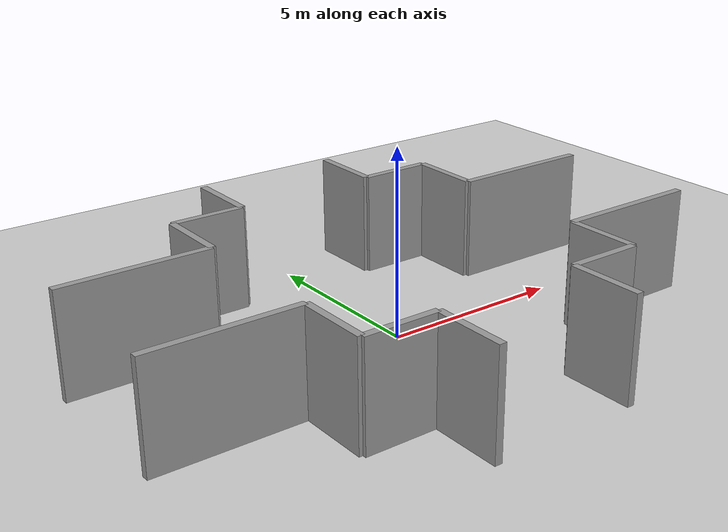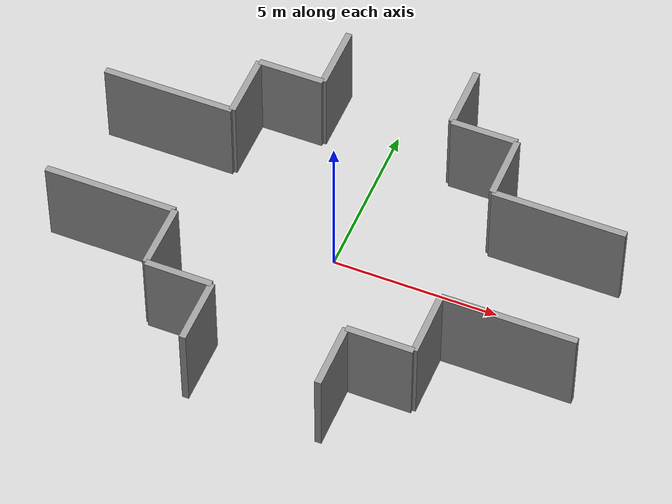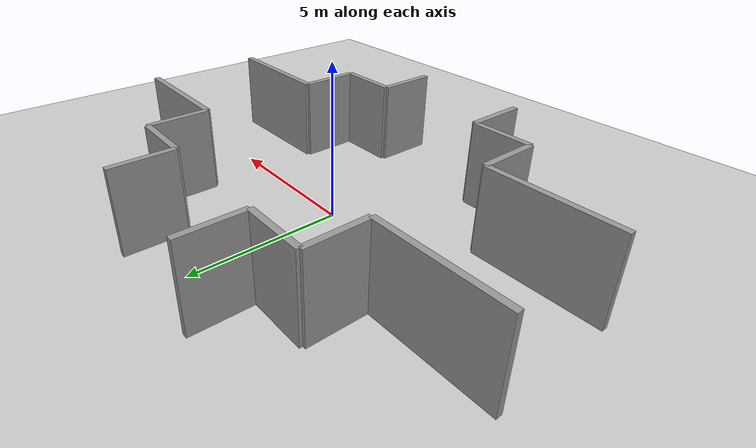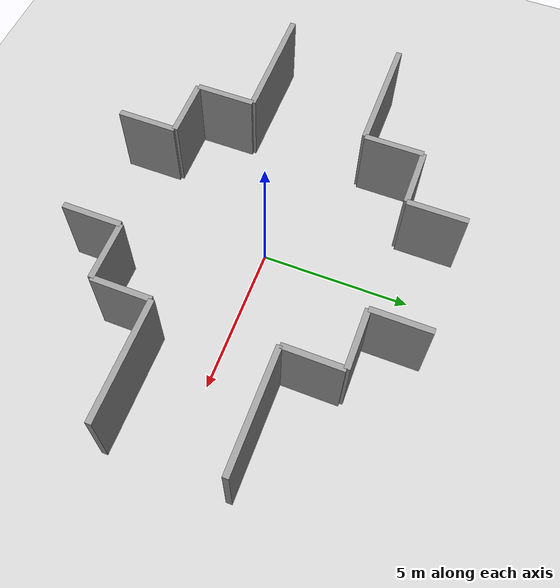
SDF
<?xml version="1.0" ?>
  <!-- this file is auto generated using pedsim_gazebo_plugin pkg -->
  <sdf version="1.5">
    <world name="default">

    <gui>
      <camera name="user_camera">
        <pose>0 0 16 0 1.5707 1.5707</pose>
      </camera>
    </gui>

    <!-- Ground Plane -->
    <include>
      <uri>model://ground_plane</uri>
    </include>

    <include>
      <uri>model://sun</uri>
    </include>

    <model name='grey_wall_1'>
      <static>1</static>
      <link name='link'>
        <pose frame=''>-2.0 -5.0  1.4 0 0 1.57</pose>
        <collision name='collision'>
          <geometry>
            <box>
              <size> 2.0 0.2  2.8 </size>
            </box>
          </geometry>
          <max_contacts>10</max_contacts>
          <surface>
            <contact>
              <ode/>
            </contact>
            <bounce/>
            <friction>
              <torsional>
                <ode/>
              </torsional>
              <ode/>
            </friction>
          </surface>
        </collision>
        <visual name='visual'>
          <cast_shadows>0</cast_shadows>
          <geometry>
            <box>
              <size> 2.0 0.2  2.8 </size>
            </box>
          </geometry>
            <material>
              <script>
                <uri>model://grey_wall/materials/scripts</uri>
                <uri>model://grey_wall/materials/textures</uri>
                <name>vrc/grey_wall</name>
              </script>
            </material>
        </visual>
        <self_collide>0</self_collide>
        <enable_wind>0</enable_wind>
        <kinematic>0</kinematic>
      </link>
    </model>

    <model name='grey_wall_2'>
      <static>1</static>
      <link name='link'>
        <pose frame=''>2.0 -5.0  1.4 0 0 1.57</pose>
        <collision name='collision'>
          <geometry>
            <box>
              <size> 2.0 0.2  2.8 </size>
            </box>
          </geometry>
          <max_contacts>10</max_contacts>
          <surface>
            <contact>
              <ode/>
            </contact>
            <bounce/>
            <friction>
              <torsional>
                <ode/>
              </torsional>
              <ode/>
            </friction>
          </surface>
        </collision>
        <visual name='visual'>
          <cast_shadows>0</cast_shadows>
          <geometry>
            <box>
              <size> 2.0 0.2  2.8 </size>
            </box>
          </geometry>
            <material>
              <script>
                <uri>model://grey_wall/materials/scripts</uri>
                <uri>model://grey_wall/materials/textures</uri>
                <name>vrc/grey_wall</name>
              </script>
            </material>
        </visual>
        <self_collide>0</self_collide>
        <enable_wind>0</enable_wind>
        <kinematic>0</kinematic>
      </link>
    </model>

    <model name='grey_wall_3'>
      <static>1</static>
      <link name='link'>
        <pose frame=''>-3.0 -4.0  1.4 0 0 -0.0</pose>
        <collision name='collision'>
          <geometry>
            <box>
              <size> 2.0 0.2  2.8 </size>
            </box>
          </geometry>
          <max_contacts>10</max_contacts>
          <surface>
            <contact>
              <ode/>
            </contact>
            <bounce/>
            <friction>
              <torsional>
                <ode/>
              </torsional>
              <ode/>
            </friction>
          </surface>
        </collision>
        <visual name='visual'>
          <cast_shadows>0</cast_shadows>
          <geometry>
            <box>
              <size> 2.0 0.2  2.8 </size>
            </box>
          </geometry>
            <material>
              <script>
                <uri>model://grey_wall/materials/scripts</uri>
                <uri>model://grey_wall/materials/textures</uri>
                <name>vrc/grey_wall</name>
              </script>
            </material>
        </visual>
        <self_collide>0</self_collide>
        <enable_wind>0</enable_wind>
        <kinematic>0</kinematic>
      </link>
    </model>

    <model name='grey_wall_4'>
      <static>1</static>
      <link name='link'>
        <pose frame=''>3.0 -4.0  1.4 0 0 0.0</pose>
        <collision name='collision'>
          <geometry>
            <box>
              <size> 2.0 0.2  2.8 </size>
            </box>
          </geometry>
          <max_contacts>10</max_contacts>
          <surface>
            <contact>
              <ode/>
            </contact>
            <bounce/>
            <friction>
              <torsional>
                <ode/>
              </torsional>
              <ode/>
            </friction>
          </surface>
        </collision>
        <visual name='visual'>
          <cast_shadows>0</cast_shadows>
          <geometry>
            <box>
              <size> 2.0 0.2  2.8 </size>
            </box>
          </geometry>
            <material>
              <script>
                <uri>model://grey_wall/materials/scripts</uri>
                <uri>model://grey_wall/materials/textures</uri>
                <name>vrc/grey_wall</name>
              </script>
            </material>
        </visual>
        <self_collide>0</self_collide>
        <enable_wind>0</enable_wind>
        <kinematic>0</kinematic>
      </link>
    </model>

    <model name='grey_wall_5'>
      <static>1</static>
      <link name='link'>
        <pose frame=''>-4.0 -3.0  1.4 0 0 1.57</pose>
        <collision name='collision'>
          <geometry>
            <box>
              <size> 2.0 0.2  2.8 </size>
            </box>
          </geometry>
          <max_contacts>10</max_contacts>
          <surface>
            <contact>
              <ode/>
            </contact>
            <bounce/>
            <friction>
              <torsional>
                <ode/>
              </torsional>
              <ode/>
            </friction>
          </surface>
        </collision>
        <visual name='visual'>
          <cast_shadows>0</cast_shadows>
          <geometry>
            <box>
              <size> 2.0 0.2  2.8 </size>
            </box>
          </geometry>
            <material>
              <script>
                <uri>model://grey_wall/materials/scripts</uri>
                <uri>model://grey_wall/materials/textures</uri>
                <name>vrc/grey_wall</name>
              </script>
            </material>
        </visual>
        <self_collide>0</self_collide>
        <enable_wind>0</enable_wind>
        <kinematic>0</kinematic>
      </link>
    </model>

    <model name='grey_wall_6'>
      <static>1</static>
      <link name='link'>
        <pose frame=''>4.0 -3.0  1.4 0 0 1.57</pose>
        <collision name='collision'>
          <geometry>
            <box>
              <size> 2.0 0.2  2.8 </size>
            </box>
          </geometry>
          <max_contacts>10</max_contacts>
          <surface>
            <contact>
              <ode/>
            </contact>
            <bounce/>
            <friction>
              <torsional>
                <ode/>
              </torsional>
              <ode/>
            </friction>
          </surface>
        </collision>
        <visual name='visual'>
          <cast_shadows>0</cast_shadows>
          <geometry>
            <box>
              <size> 2.0 0.2  2.8 </size>
            </box>
          </geometry>
            <material>
              <script>
                <uri>model://grey_wall/materials/scripts</uri>
                <uri>model://grey_wall/materials/textures</uri>
                <name>vrc/grey_wall</name>
              </script>
            </material>
        </visual>
        <self_collide>0</self_collide>
        <enable_wind>0</enable_wind>
        <kinematic>0</kinematic>
      </link>
    </model>

    <model name='grey_wall_7'>
      <static>1</static>
      <link name='link'>
        <pose frame=''>-4.0 3.0  1.4 0 0 1.57</pose>
        <collision name='collision'>
          <geometry>
            <box>
              <size> 2.0 0.2  2.8 </size>
            </box>
          </geometry>
          <max_contacts>10</max_contacts>
          <surface>
            <contact>
              <ode/>
            </contact>
            <bounce/>
            <friction>
              <torsional>
                <ode/>
              </torsional>
              <ode/>
            </friction>
          </surface>
        </collision>
        <visual name='visual'>
          <cast_shadows>0</cast_shadows>
          <geometry>
            <box>
              <size> 2.0 0.2  2.8 </size>
            </box>
          </geometry>
            <material>
              <script>
                <uri>model://grey_wall/materials/scripts</uri>
                <uri>model://grey_wall/materials/textures</uri>
                <name>vrc/grey_wall</name>
              </script>
            </material>
        </visual>
        <self_collide>0</self_collide>
        <enable_wind>0</enable_wind>
        <kinematic>0</kinematic>
      </link>
    </model>

    <model name='grey_wall_8'>
      <static>1</static>
      <link name='link'>
        <pose frame=''>4.0 3.0  1.4 0 0 1.57</pose>
        <collision name='collision'>
          <geometry>
            <box>
              <size> 2.0 0.2  2.8 </size>
            </box>
          </geometry>
          <max_contacts>10</max_contacts>
          <surface>
            <contact>
              <ode/>
            </contact>
            <bounce/>
            <friction>
              <torsional>
                <ode/>
              </torsional>
              <ode/>
            </friction>
          </surface>
        </collision>
        <visual name='visual'>
          <cast_shadows>0</cast_shadows>
          <geometry>
            <box>
              <size> 2.0 0.2  2.8 </size>
            </box>
          </geometry>
            <material>
              <script>
                <uri>model://grey_wall/materials/scripts</uri>
                <uri>model://grey_wall/materials/textures</uri>
                <name>vrc/grey_wall</name>
              </script>
            </material>
        </visual>
        <self_collide>0</self_collide>
        <enable_wind>0</enable_wind>
        <kinematic>0</kinematic>
      </link>
    </model>

    <model name='grey_wall_9'>
      <static>1</static>
      <link name='link'>
        <pose frame=''>-3.0 4.0  1.4 0 0 -0.0</pose>
        <collision name='collision'>
          <geometry>
            <box>
              <size> 2.0 0.2  2.8 </size>
            </box>
          </geometry>
          <max_contacts>10</max_contacts>
          <surface>
            <contact>
              <ode/>
            </contact>
            <bounce/>
            <friction>
              <torsional>
                <ode/>
              </torsional>
              <ode/>
            </friction>
          </surface>
        </collision>
        <visual name='visual'>
          <cast_shadows>0</cast_shadows>
          <geometry>
            <box>
              <size> 2.0 0.2  2.8 </size>
            </box>
          </geometry>
            <material>
              <script>
                <uri>model://grey_wall/materials/scripts</uri>
                <uri>model://grey_wall/materials/textures</uri>
                <name>vrc/grey_wall</name>
              </script>
            </material>
        </visual>
        <self_collide>0</self_collide>
        <enable_wind>0</enable_wind>
        <kinematic>0</kinematic>
      </link>
    </model>

    <model name='grey_wall_10'>
      <static>1</static>
      <link name='link'>
        <pose frame=''>3.0 4.0  1.4 0 0 0.0</pose>
        <collision name='collision'>
          <geometry>
            <box>
              <size> 2.0 0.2  2.8 </size>
            </box>
          </geometry>
          <max_contacts>10</max_contacts>
          <surface>
            <contact>
              <ode/>
            </contact>
            <bounce/>
            <friction>
              <torsional>
                <ode/>
              </torsional>
              <ode/>
            </friction>
          </surface>
        </collision>
        <visual name='visual'>
          <cast_shadows>0</cast_shadows>
          <geometry>
            <box>
              <size> 2.0 0.2  2.8 </size>
            </box>
          </geometry>
            <material>
              <script>
                <uri>model://grey_wall/materials/scripts</uri>
                <uri>model://grey_wall/materials/textures</uri>
                <name>vrc/grey_wall</name>
              </script>
            </material>
        </visual>
        <self_collide>0</self_collide>
        <enable_wind>0</enable_wind>
        <kinematic>0</kinematic>
      </link>
    </model>

    <model name='grey_wall_11'>
      <static>1</static>
      <link name='link'>
        <pose frame=''>-6.0 -2.0  1.4 0 0 -0.0</pose>
        <collision name='collision'>
          <geometry>
            <box>
              <size> 4.0 0.2  2.8 </size>
            </box>
          </geometry>
          <max_contacts>10</max_contacts>
          <surface>
            <contact>
              <ode/>
            </contact>
            <bounce/>
            <friction>
              <torsional>
                <ode/>
              </torsional>
              <ode/>
            </friction>
          </surface>
        </collision>
        <visual name='visual'>
          <cast_shadows>0</cast_shadows>
          <geometry>
            <box>
              <size> 4.0 0.2  2.8 </size>
            </box>
          </geometry>
            <material>
              <script>
                <uri>model://grey_wall/materials/scripts</uri>
                <uri>model://grey_wall/materials/textures</uri>
                <name>vrc/grey_wall</name>
              </script>
            </material>
        </visual>
        <self_collide>0</self_collide>
        <enable_wind>0</enable_wind>
        <kinematic>0</kinematic>
      </link>
    </model>

    <model name='grey_wall_12'>
      <static>1</static>
      <link name='link'>
        <pose frame=''>6.0 -2.0  1.4 0 0 0.0</pose>
        <collision name='collision'>
          <geometry>
            <box>
              <size> 4.0 0.2  2.8 </size>
            </box>
          </geometry>
          <max_contacts>10</max_contacts>
          <surface>
            <contact>
              <ode/>
            </contact>
            <bounce/>
            <friction>
              <torsional>
                <ode/>
              </torsional>
              <ode/>
            </friction>
          </surface>
        </collision>
        <visual name='visual'>
          <cast_shadows>0</cast_shadows>
          <geometry>
            <box>
              <size> 4.0 0.2  2.8 </size>
            </box>
          </geometry>
            <material>
              <script>
                <uri>model://grey_wall/materials/scripts</uri>
                <uri>model://grey_wall/materials/textures</uri>
                <name>vrc/grey_wall</name>
              </script>
            </material>
        </visual>
        <self_collide>0</self_collide>
        <enable_wind>0</enable_wind>
        <kinematic>0</kinematic>
      </link>
    </model>

    <model name='grey_wall_13'>
      <static>1</static>
      <link name='link'>
        <pose frame=''>-6.0 2.0  1.4 0 0 -0.0</pose>
        <collision name='collision'>
          <geometry>
            <box>
              <size> 4.0 0.2  2.8 </size>
            </box>
          </geometry>
          <max_contacts>10</max_contacts>
          <surface>
            <contact>
              <ode/>
            </contact>
            <bounce/>
            <friction>
              <torsional>
                <ode/>
              </torsional>
              <ode/>
            </friction>
          </surface>
        </collision>
        <visual name='visual'>
          <cast_shadows>0</cast_shadows>
          <geometry>
            <box>
              <size> 4.0 0.2  2.8 </size>
            </box>
          </geometry>
            <material>
              <script>
                <uri>model://grey_wall/materials/scripts</uri>
                <uri>model://grey_wall/materials/textures</uri>
                <name>vrc/grey_wall</name>
              </script>
            </material>
        </visual>
        <self_collide>0</self_collide>
        <enable_wind>0</enable_wind>
        <kinematic>0</kinematic>
      </link>
    </model>

    <model name='grey_wall_14'>
      <static>1</static>
      <link name='link'>
        <pose frame=''>6.0 2.0  1.4 0 0 0.0</pose>
        <collision name='collision'>
          <geometry>
            <box>
              <size> 4.0 0.2  2.8 </size>
            </box>
          </geometry>
          <max_contacts>10</max_contacts>
          <surface>
            <contact>
              <ode/>
            </contact>
            <bounce/>
            <friction>
              <torsional>
                <ode/>
              </torsional>
              <ode/>
            </friction>
          </surface>
        </collision>
        <visual name='visual'>
          <cast_shadows>0</cast_shadows>
          <geometry>
            <box>
              <size> 4.0 0.2  2.8 </size>
            </box>
          </geometry>
            <material>
              <script>
                <uri>model://grey_wall/materials/scripts</uri>
                <uri>model://grey_wall/materials/textures</uri>
                <name>vrc/grey_wall</name>
              </script>
            </material>
        </visual>
        <self_collide>0</self_collide>
        <enable_wind>0</enable_wind>
        <kinematic>0</kinematic>
      </link>
    </model>

    <model name='grey_wall_15'>
      <static>1</static>
      <link name='link'>
        <pose frame=''>-2.0 5.0  1.4 0 0 1.57</pose>
        <collision name='collision'>
          <geometry>
            <box>
              <size> 2.0 0.2  2.8 </size>
            </box>
          </geometry>
          <max_contacts>10</max_contacts>
          <surface>
            <contact>
              <ode/>
            </contact>
            <bounce/>
            <friction>
              <torsional>
                <ode/>
              </torsional>
              <ode/>
            </friction>
          </surface>
        </collision>
        <visual name='visual'>
          <cast_shadows>0</cast_shadows>
          <geometry>
            <box>
              <size> 2.0 0.2  2.8 </size>
            </box>
          </geometry>
            <material>
              <script>
                <uri>model://grey_wall/materials/scripts</uri>
                <uri>model://grey_wall/materials/textures</uri>
                <name>vrc/grey_wall</name>
              </script>
            </material>
        </visual>
        <self_collide>0</self_collide>
        <enable_wind>0</enable_wind>
        <kinematic>0</kinematic>
      </link>
    </model>

    <model name='grey_wall_16'>
      <static>1</static>
      <link name='link'>
        <pose frame=''>2.0 5.0  1.4 0 0 1.57</pose>
        <collision name='collision'>
          <geometry>
            <box>
              <size> 2.0 0.2  2.8 </size>
            </box>
          </geometry>
          <max_contacts>10</max_contacts>
          <surface>
            <contact>
              <ode/>
            </contact>
            <bounce/>
            <friction>
              <torsional>
                <ode/>
              </torsional>
              <ode/>
            </friction>
          </surface>
        </collision>
        <visual name='visual'>
          <cast_shadows>0</cast_shadows>
          <geometry>
            <box>
              <size> 2.0 0.2  2.8 </size>
            </box>
          </geometry>
            <material>
              <script>
                <uri>model://grey_wall/materials/scripts</uri>
                <uri>model://grey_wall/materials/textures</uri>
                <name>vrc/grey_wall</name>
              </script>
            </material>
        </visual>
        <self_collide>0</self_collide>
        <enable_wind>0</enable_wind>
        <kinematic>0</kinematic>
      </link>
    </model>

    <plugin name="ActorPosesPlugin" filename="libActorPosesPlugin.so">
    </plugin>

  </world>
</sdf>
